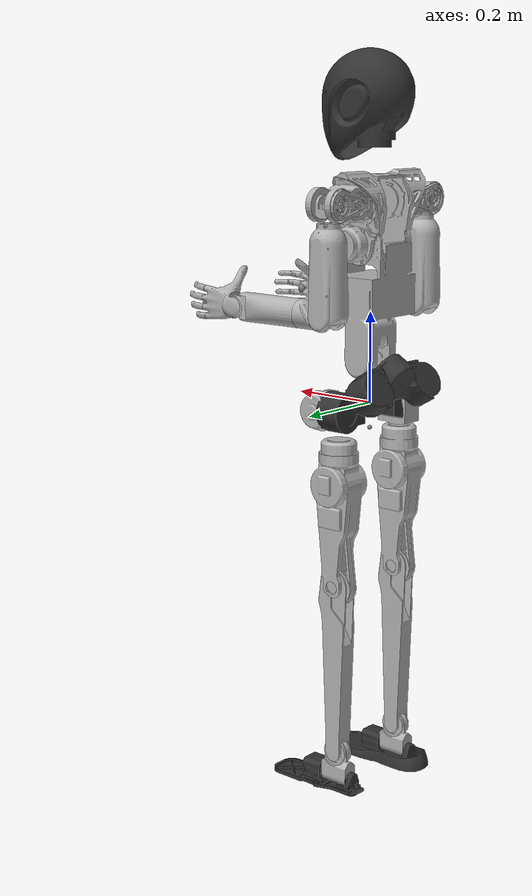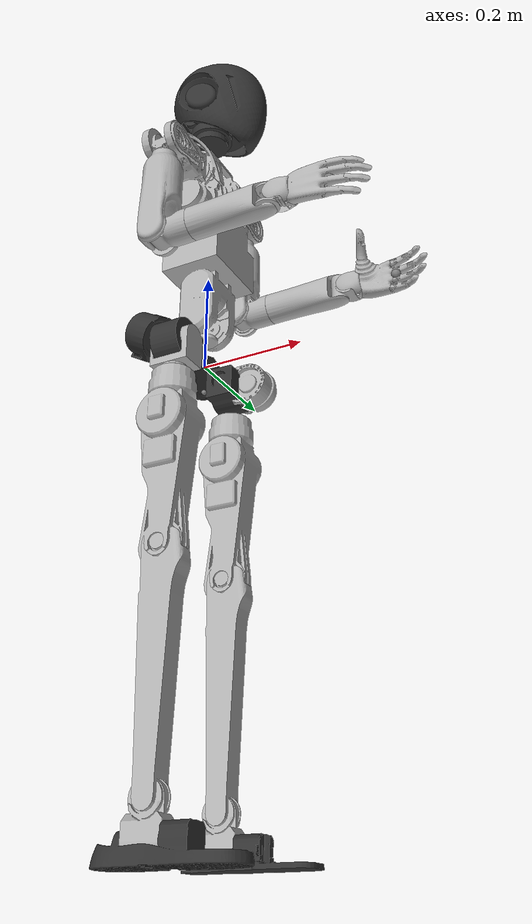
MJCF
<mujoco model="F2">
  <compiler angle="radian" meshdir="./meshes/" autolimits="true"/>
  <default>
    <default class="h1">
      <default class="visual">
        <geom type="mesh" density="0" material="silver" contype="0" conaffinity="0" group="2"/>
      </default>
      <default class="collision">
        <geom type="capsule" priority="1" condim="6" group="3"/>
        <default class="foot_capsule">
          <geom size="0.04" rgba="0.75294 0.75294 0.75294 1" />
        </default>
      </default>
      <site rgba="0.75294 0.75294 0.75294 1" group="5"/>
    </default>
  </default>

  <asset>
    <material name="silver" rgba="0.7 0.7 0.7 1"/>
    <material name="black" rgba="0.2 0.2 0.2 1"/>

    <mesh name="pelvis" file="pelvis.STL"/>
    <mesh name="left_hip_pitch_link" file="left_hip_pitch_link.STL"/>
    <mesh name="left_hip_roll_link" file="left_hip_roll_link.STL"/>
    <mesh name="left_hip_yaw_link" file="left_hip_yaw_link.STL"/>
    <mesh name="left_knee_link" file="left_knee_link.STL"/>
    <mesh name="left_ankle_pitch_link" file="left_ankle_pitch_link.STL"/>
    <mesh name="left_ankle_roll_link" file="left_ankle_roll_link.STL"/>
    <mesh name="right_hip_pitch_link" file="right_hip_pitch_link.STL"/>
    <mesh name="right_hip_roll_link" file="right_hip_roll_link.STL"/>
    <mesh name="right_hip_yaw_link" file="right_hip_yaw_link.STL"/>
    <mesh name="right_knee_link" file="right_knee_link.STL"/>
    <mesh name="right_ankle_pitch_link" file="right_ankle_pitch_link.STL"/>
    <mesh name="right_ankle_roll_link" file="right_ankle_roll_link.STL"/>
    <mesh name="waist_yaw_link" file="waist_yaw_link.STL"/>
    <mesh name="waist_roll_link" file="waist_roll_link.STL"/>
    <mesh name="torso_link" file="torso_link.STL"/>
    <mesh name="left_shoulder_pitch_link" file="left_shoulder_pitch_link.STL"/>
    <mesh name="left_shoulder_roll_link" file="left_shoulder_roll_link.STL"/>
    <mesh name="left_shoulder_yaw_link" file="left_shoulder_yaw_link.STL"/>
    <mesh name="left_elbow_link" file="left_elbow_link.STL"/>
    <mesh name="left_wrist_roll_link_v1_1" file="left_wrist_roll_link_v1_1.STL"/>
    <mesh name="left_wrist_yaw_link_v1_1" file="left_wrist_yaw_link_v1_1.STL"/>
    <mesh name="left_wrist_pitch_link_v1_1" file="left_wrist_pitch_link_v1_1.STL"/>
    <mesh name="left_hand_link" file="left_hand_link.STL"/>
    <mesh name="right_shoulder_pitch_link" file="right_shoulder_pitch_link.STL"/>
    <mesh name="right_shoulder_roll_link" file="right_shoulder_roll_link.STL"/>
    <mesh name="right_shoulder_yaw_link" file="right_shoulder_yaw_link.STL"/>
    <mesh name="right_elbow_link" file="right_elbow_link.STL"/>
    <mesh name="right_wrist_roll_link_v1_1" file="right_wrist_roll_link_v1_1.STL"/>
    <mesh name="right_wrist_yaw_link_v1_1" file="right_wrist_yaw_link_v1_1.STL"/>
    <mesh name="right_wrist_pitch_link_v1_1" file="right_wrist_pitch_link_v1_1.STL"/>
    <mesh name="right_hand_link" file="right_hand_link.STL"/>
    <mesh name="head_yaw_link" file="head_yaw_link.STL"/>
    <mesh name="head_pitch_link" file="head_pitch_link.STL"/>
  </asset>

  <worldbody>
    <body name="pelvis" >
      <light pos="0 0 2" mode="trackcom"/>
      <camera name="tracking" pos="1.734 -1.135 .35" xyaxes="0.552 0.834 -0.000 -0.170 0.112 0.979" mode="trackcom"/>
      <inertial pos="1.227e-05 0 0.00175202" quat="0.707113 0.707071 -0.00603929 0.00224665" mass="1.923" diaginertia="0.00328643 0.00327877 0.00187875"/>
      <freejoint name="floating_base_joint"/>
      <geom class="visual" material="black" mesh="pelvis"/>
      <geom name="pelvis_collision" class="collision" type="sphere" size="0.05" pos="0 0 -0.00"/>
      <site name="imu_in_pelvis" size="0.005" pos="0. 0 -0.055"/>
      <body name="left_hip_pitch_link" pos="0 0.0495 0">
        <inertial pos="-0.00059823 0.053979 -0.0042224" quat="0.652315 0.75755 -0.0242065 0.00423816" mass="1.04" diaginertia="0.00138575 0.00113626 0.000872142"/>
        <joint name="left_hip_pitch_joint" pos="0 0 0" axis="0 1 0" range="-2.3562 2.3562"/>
        <geom class="visual" material="black" mesh="left_hip_pitch_link"/>
        <body name="left_hip_roll_link" pos="0 0.0555 -0.005">
          <inertial pos="0.0043213 0 -0.027634" quat="0.408553 0.57731 0.577033 0.408449" mass="0.14" diaginertia="0.00018358 0.000141244 0.000101956"/>
          <joint name="left_hip_roll_joint" axis="1 0 0" range="-0.5236 1.5708" actuatorfrcrange="-87 87"/>
          <geom class="visual" mesh="left_hip_roll_link"/>
          <geom name="left_hip_collision" class="collision" size="0.045"  fromto="-0.0 0 0 -0.0 0 -0.07"/>
          <body name="left_hip_yaw_link" pos="0 0 -0.0536">
            <inertial pos="0.00010121 1.383e-05 -0.102311" quat="0.99999 0.00375205 0.0025479 0.000511966" mass="2.275" diaginertia="0.0191971 0.018658 0.00224713"/>
            <joint name="left_hip_yaw_joint" pos="0 0 0" axis="0 0 1" range="-1.8326 1.8326" actuatorfrcrange="-87 87"/>
            <geom class="visual" mesh="left_hip_yaw_link"/>
            <geom name="left_thigh_collision" class="collision" size="0.045" fromto="-0.0 0 -0.10 -0.00 0 -0.28"/>
            <body name="left_knee_link" pos="0 0 -0.3304">
              <inertial pos="0.00334882 -0.00032247 -0.149842" quat="0.698241 -0.0104039 -0.00666549 0.715757" mass="0.635" diaginertia="0.0111018 0.0110139 0.000311373"/>
              <joint name="left_knee_joint" pos="0 0 0" axis="0 1 0" range="-0.01745 2.3562" actuatorfrcrange="-120 120"/>
              <geom class="visual" mesh="left_knee_link"/>
              <geom name="left_shin_collision" class="collision" size="0.045" fromto="0.00 0 -0.02 -0.00 0 -0.37"/>
              <body name="left_ankle_pitch_link" pos="0 0 -0.39">
                <inertial pos="0.0024178 -1.256e-05 -0.0238176" quat="0.704903 0.052882 0.0527757 0.705358" mass="0.22" diaginertia="0.00023561 0.000170507 9.99229e-05"/>
                <joint name="left_ankle_pitch_joint" pos="0 0 0" axis="0 1 0" range="-0.873 1.0472" actuatorfrcrange="-89 89"/>
                <geom class="visual" mesh="left_ankle_pitch_link"/>
                <body name="left_ankle_roll_link" pos="0 0 -0.058">
                  <inertial pos="0.0510876 0.00023922 -0.00447269" quat="0 0.707107 0 0.707107" mass="0.411" diaginertia="0.00047916 0.00047226 9.993e-05"/>
                  <joint name="left_ankle_roll_joint" pos="0 0 0" axis="1 0 0" range="-0.5236 0.5236"/>
                  <geom class="visual" material="black" mesh="left_ankle_roll_link"/>
                  <geom name="left_foot1_collision" class="foot_capsule" fromto="0.1 -0.026 -0.025 0.05 -0.027 -0.025"/>
                  <geom name="left_foot2_collision" class="foot_capsule" fromto="-0.044 -0.018 -0.025 0.123 -0.018 -0.025"/>
                  <geom name="left_foot3_collision" class="foot_capsule" fromto="-0.052 -0.01 -0.025 0.13 -0.01 -0.025"/>
                  <geom name="left_foot4_collision" class="foot_capsule" fromto="-0.054 0 -0.025 0.132 0 -0.025"/>
                  <geom name="left_foot5_collision" class="foot_capsule" fromto="-0.052 0.01 -0.025 0.13 0.01 -0.025"/>
                  <geom name="left_foot6_collision" class="foot_capsule" fromto="-0.044 0.018 -0.025 0.123 0.018 -0.025"/>
                  <geom name="left_foot7_collision" class="foot_capsule" fromto="0.1 0.026 -0.025 0.05 0.026 -0.025"/>
                  <site name="left_foot" rgba="1 0 0 1" pos="0.02 0 -0.01"/>
                </body>
              </body>
            </body>
          </body>
        </body>
      </body>
      <body name="right_hip_pitch_link" pos="0 -0.0495 0">
        <inertial pos="-0.00059823 -0.053979 -0.0042224" quat="0.75755 0.652315 -0.00423816 0.0242065" mass="1.04" diaginertia="0.00138575 0.00113626 0.000872142"/>
        <joint name="right_hip_pitch_joint" pos="0 0 0" axis="0 1 0" range="-2.3562 2.3562" actuatorfrcrange="-75 75"/>
        <geom class="visual" material="black" mesh="right_hip_pitch_link"/>
        <body name="right_hip_roll_link" pos="0 -0.0555 -0.005">
          <inertial pos="0.0043213 0 -0.027634" quat="0.408553 0.57731 0.577033 0.408449" mass="0.14" diaginertia="0.00018358 0.000141244 0.000101956"/>
          <joint name="right_hip_roll_joint" pos="0 0 0" axis="1 0 0" range="-1.5708 0.5236" actuatorfrcrange="-87 87"/>
          <geom class="visual" mesh="right_hip_roll_link"/>
          <geom name="right_hip_collision" class="collision" size="0.045"  fromto="-0.0 0 0 -0.0 0 -0.07"/>
          <body name="right_hip_yaw_link" pos="0 0 -0.0536">
            <inertial pos="0.00028095 -0.00037298 -0.102311" quat="0.999997 0.00155532 0.00134116 0.00120674" mass="2.275" diaginertia="0.0191961 0.0186572 0.00224772"/>
            <joint name="right_hip_yaw_joint" pos="0 0 0" axis="0 0 1" range="-1.8326 1.8326" actuatorfrcrange="-87 87"/>
            <geom class="visual" mesh="right_hip_yaw_link"/>
            <geom name="right_thigh_collision" class="collision" size="0.045" fromto="-0.0 0 -0.10 -0.00 0 -0.28"/>
            <body name="right_knee_link" pos="0 0 -0.3304">
              <inertial pos="0.0033489 -0.00032248 -0.14984" quat="0.715839 -0.00666391 -0.0104045 0.698156" mass="0.635" diaginertia="0.0111013 0.0110142 0.000311373"/>
              <joint name="right_knee_joint" pos="0 0 0" axis="0 1 0" range="-0.01745 2.3562" actuatorfrcrange="-120 120"/>
              <geom class="visual" mesh="right_knee_link"/>
              <geom name="right_shin_collision" class="collision" size="0.045" fromto="0.00 0 -0.02 -0.00 0 -0.37"/>
              <body name="right_ankle_pitch_link" pos="0 0 -0.39">
                <inertial pos="0.0024178 -1.257e-05 -0.023818" quat="0.704903 0.052882 0.0527757 0.705358" mass="0.22" diaginertia="0.00023561 0.000170507 9.99229e-05"/>
                <joint name="right_ankle_pitch_joint" pos="0 0 0" axis="0 1 0" range="-0.873 1.0472" actuatorfrcrange="-89 89"/>
                <geom class="visual" mesh="right_ankle_pitch_link"/>
                <body name="right_ankle_roll_link" pos="0 0 -0.058">
                  <inertial pos="0.0510876 0.00023921 -0.00447269" quat="0 0.707107 0 0.707107" mass="0.411" diaginertia="0.00047916 0.00047226 9.993e-05"/>
                  <geom class="visual" material="black" mesh="right_ankle_roll_link"/>
                  <joint name="right_ankle_roll_joint" pos="0 0 0" axis="1 0 0" range="-0.5236 0.5236" actuatorfrcrange="-12 12"/>
                  <geom name="right_foot1_collision" class="foot_capsule" fromto="0.1 -0.026 -0.025 0.05 -0.026 -0.025"/>
                  <geom name="right_foot2_collision" class="foot_capsule" fromto="-0.044 -0.018 -0.025 0.123 -0.018 -0.025"/>
                  <geom name="right_foot3_collision" class="foot_capsule" fromto="-0.052 -0.01 -0.025 0.13 -0.01 -0.025"/>
                  <geom name="right_foot4_collision" class="foot_capsule" fromto="-0.054 0 -0.025 0.132 0 -0.025"/>
                  <geom name="right_foot5_collision" class="foot_capsule" fromto="-0.052 0.01 -0.025 0.13 0.01 -0.025"/>
                  <geom name="right_foot6_collision" class="foot_capsule" fromto="-0.044 0.018 -0.025 0.123 0.018 -0.025"/>
                  <geom name="right_foot7_collision" class="foot_capsule" fromto="0.1 0.026 -0.025 0.05 0.026 -0.025"/>
                  <site name="right_foot" rgba="1 0 0 1" pos="0.02 0 -0.01"/>
                </body>
              </body>
            </body>
          </body>
        </body>
      </body>
      <body name="waist_yaw_link" pos="0 0 0.0955">
        <inertial pos="-0.000168719 0 0.00494718" quat="0.705214 0.0517024 0.0517024 0.705214" mass="0.274" diaginertia="0.000141864 0.000115748 0.00010802"/>
        <joint name="waist_yaw_joint" pos="0 0 0" axis="0 0 1" range="-1.5708 1.5708" actuatorfrcrange="-87 87"/>
        <geom class="visual" mesh="waist_yaw_link"/>
        <body name="torso_link">

          <inertial pos="-0.00019931 0.00150681 0.185114" mass="9.609" diaginertia="0.121179 0.120199 0.021852"/>
          <joint name="waist_roll_joint" pos="0 0 0" axis="1 0 0" range="-0.5236 0.5236" actuatorfrcrange="-87 87"/>
          <geom class="visual" mesh="torso_link"/>
          <geom name="torso_collision" class="collision" size="0.09" fromto="0.01 0 0.08 0.01 0 0.30"/>
          <geom name="head_collision" class="collision" type="sphere" size="0.09" pos="0 0 .56"/>
          <body name="left_shoulder_pitch_link" pos="-0.015 0.05635 0.342">
            <inertial pos="5.543e-05 0.0554533 5.429e-05" quat="0.500477 0.499362 -0.499832 0.500328" mass="1.277" diaginertia="0.00194002 0.00178135 0.00103975"/>
            <joint name="left_shoulder_pitch_joint" pos="0 0 0" axis="0 1 0" range="-3.6652 2.0944" actuatorfrcrange="-48 48"/>
            <geom class="visual" mesh="left_shoulder_pitch_link"/>
            <body name="left_shoulder_roll_link" pos="0 0.1031 0">
              <inertial pos="0 -0.00015563 -0.00797243" quat="0.449914 0.545507 0.449914 0.545507" mass="0.229" diaginertia="7.05648e-05 6.60152e-05 5.784e-05"/>
              <joint name="left_shoulder_roll_joint" pos="0 0 0" axis="1 0 0" range="-0.2618 2.356" actuatorfrcrange="-84 84"/>
              <geom class="visual" mesh="left_shoulder_roll_link"/>
              <body name="left_shoulder_yaw_link">
                <inertial pos="-7.8318e-05 0.001011 -0.12915" mass="1.194" diaginertia="0.00412845 0.00411827 0.00084103"/>
                <joint name="left_shoulder_yaw_joint" pos="0 0 0" axis="0 0 1" range="-2.1817 2.1817" actuatorfrcrange="-84 84"/>
                <geom class="visual" mesh="left_shoulder_yaw_link"/>
                <geom name="left_shoulder_yaw_collision" class="collision" size="0.035" fromto="0 0 -0.05 0 0 -0.20"/>
                <body name="left_elbow_link" pos="0 0 -0.2295">
                  <inertial pos="0.0167741 0 -0.00133301" quat="0 0.684589 0 0.728929" mass="0.185" diaginertia="0.000124726 0.00011358 7.98035e-05"/>
                  <joint name="left_elbow_joint" pos="0 0 0" axis="0 1 0" range="-0.6981 1.5707" actuatorfrcrange="-37 37"/>
                  <geom class="visual" mesh="left_elbow_link"/>
                  <geom name="left_elbow_yaw_collision" class="collision" size="0.035" fromto="-0.00 0 -0.0 0.185 0 -0.0"/>
                  <body name="left_wrist_roll_link">
                    <inertial pos="0.0985386 -0.00025438 -0.00071846" quat="0.49661 0.497949 0.510134 0.495166" mass="1.372" diaginertia="0.00443163 0.00434654 0.000486748"/>
                    <joint name="left_wrist_roll_joint" pos="0 0 0" axis="1 0 0" range="-2.0071 2.0071" actuatorfrcrange="-37 37"/>
                    <geom class="visual" mesh="left_wrist_roll_link_v1_1"/>
                    <body name="left_wrist_yaw_link" pos="0.23 0 0">
                      <inertial pos="0.0075268 0 0" quat="0.5 0.5 -0.5 0.5" mass="0.042" diaginertia="1.443e-05 1.052e-05 7.83e-06"/>
                      <joint name="left_wrist_yaw_joint" pos="0 0 0" axis="0 0 1" range="-1.1344 1.1344" actuatorfrcrange="-20 20"/>
                      <geom class="visual" mesh="left_wrist_yaw_link_v1_1"/>
                      <geom name="left_wrist_collision" class="collision" size="0.035" fromto="0.03 0 0 0.04 0 0"/>
                      <body name="left_wrist_pitch_link" pos="0.021 0 0">
                        <inertial pos="0.0745833 -0.00635348 0.00761055" quat="0.673531 0.336171 0.566101 0.335968" mass="0.53" diaginertia="0.00218929 0.00185367 0.000486625"/>
                        <joint name="left_wrist_pitch_joint" pos="0 0 0" axis="0 1 0" range="-0.5236 0.5236" actuatorfrcrange="-25 25"/>
                        <geom class="visual" mesh="left_wrist_pitch_link_v1_1"/>
                        <geom class="visual" mesh="left_hand_link"/>
                        <site name="left_palm" pos="0.10 0 0" size="0.01"/>
                        <geom name="left_hand_collision" class="collision" size="0.03" rgba=".2 .6 .2 .2" fromto="0.06 0 0 0.15 -0.00 0"/>
                      </body>
                    </body>
                  </body>
                </body>
              </body>
            </body>
          </body>
          <body name="right_shoulder_pitch_link" pos="-0.015 -0.05635 0.342">
            <inertial pos="0.00015543 -0.0554533 -5.429e-05" quat="0.500328 0.499832 -0.499362 0.500477" mass="1.277" diaginertia="0.00194002 0.00178135 0.00103975"/>
            <joint name="right_shoulder_pitch_joint" pos="0 0 0" axis="0 1 0" range="-3.6652 2.0944" actuatorfrcrange="-48 48"/>
            <geom class="visual" mesh="right_shoulder_pitch_link"/>
            <body name="right_shoulder_roll_link" pos="0 -0.1031 0">
              <inertial pos="0 -0.00015563 -0.00797243" quat="0.449914 0.545507 0.449914 0.545507" mass="0.229" diaginertia="7.05648e-05 6.60152e-05 5.784e-05"/>
              <joint name="right_shoulder_roll_joint" pos="0 0 0" axis="1 0 0" range="-2.356 0.2618" actuatorfrcrange="-84 84"/>
              <geom class="visual" mesh="right_shoulder_roll_link"/>
              <body name="right_shoulder_yaw_link">
                <inertial pos="-7.8318e-05 0.001011 -0.12915" mass="1.194" diaginertia="0.00412845 0.00411827 0.00084103"/>
                <joint name="right_shoulder_yaw_joint" pos="0 0 0" axis="0 0 1" range="-2.1817 2.1817" actuatorfrcrange="-84 84"/>
                <geom class="visual" mesh="right_shoulder_yaw_link"/>
                <geom name="right_shoulder_yaw_collision" class="collision" size="0.035" fromto="0 0 -0.05 0 0 -0.20"/>
                <body name="right_elbow_link" pos="0 0 -0.2295">
                  <inertial pos="0.0167741 0 -0.00133301" quat="0 0.684589 0 0.728929" mass="0.185" diaginertia="0.000124726 0.00011358 7.98035e-05"/>
                  <joint name="right_elbow_joint" pos="0 0 0" axis="0 1 0" range="-0.6981 1.5707" actuatorfrcrange="-37 37"/>
                  <geom class="visual" mesh="right_elbow_link"/>
                  <geom name="right_elbow_yaw_collision" class="collision" size="0.035" fromto="-0.00 0 -0.0 0.185 0 -0.0"/>
                  <body name="right_wrist_roll_link">
                    <inertial pos="0.0985386 -0.00025438 -0.00071846" quat="0.49661 0.497949 0.510134 0.495166" mass="1.372" diaginertia="0.00443163 0.00434654 0.000486748"/>
                    <joint name="right_wrist_roll_joint" pos="0 0 0" axis="1 0 0" range="-2.0071 2.0071" actuatorfrcrange="-37 37"/>
                    <geom class="visual" mesh="right_wrist_roll_link_v1_1"/>
                    <body name="right_wrist_yaw_link" pos="0.23 0 0">
                      <inertial pos="0.0075268 0 0" quat="0.5 0.5 -0.5 0.5" mass="0.042" diaginertia="1.443e-05 1.052e-05 7.83e-06"/>
                      <joint name="right_wrist_yaw_joint" pos="0 0 0" axis="0 0 1" range="-1.1344 1.1344" actuatorfrcrange="-20 20"/>
                      <geom class="visual" mesh="right_wrist_yaw_link_v1_1"/>
                      <geom name="right_wrist_collision" class="collision" size="0.035" fromto="0.03 0 0 0.04 0 0"/>
                      <body name="right_wrist_pitch_link" pos="0.021 0 0">
                        <inertial pos="0.0861973 0.00622963 0.00761411" quat="0.334902 0.565466 0.337436 0.673963" mass="0.53" diaginertia="0.00219004 0.00185458 0.00048651"/>
                        <joint name="right_wrist_pitch_joint" pos="0 0 0" axis="0 1 0" range="-0.5236 0.5236" actuatorfrcrange="-25 25"/>
                        <geom class="visual" mesh="right_wrist_pitch_link_v1_1"/>
                        <geom class="visual" mesh="right_hand_link"/>
                        <site name="right_palm" pos="0.10 0 0" size="0.01"/>
                        <geom name="right_hand_collision" class="collision" size="0.03" rgba=".2 .6 .2 .2" fromto="0.06 0 0 0.15 -0.00 0"/>
                      </body>
                    </body>
                  </body>
                </body>
              </body>
            </body>
          </body>
          <body name="head_yaw_link" pos="-0.011 0 0.5218">
            <inertial pos="-0.0115151 0 0.019677" quat="0.959901 0 -0.28034 0" mass="0.8" diaginertia="0.000485828 0.000458813 0.000216341"/>
            <geom class="visual" pos="0.0039635 0 -0.044" material="black" mesh="head_yaw_link"/>

            <body name="head_pitch_link" pos="-0.0295 0 0.0503">
              <inertial pos="0.0474296 1.03862e-06 0.0192405" quat="0 0.856691 0 0.515831" mass="0.8" diaginertia="0.00488189 0.004848 0.00387314"/>
              <geom class="visual" pos="0.0039635 0 -0.044" material="black" mesh="head_pitch_link"/>
            </body>
          </body>
        </body>
      </body>
    </body>
  </worldbody>
  <contact>
    <exclude body1="left_elbow_link" body2="left_wrist_pitch_link"/>
    <exclude body1="right_elbow_link" body2="right_wrist_pitch_link"/>
    <exclude body1="pelvis" body2="right_hip_roll_link"/>
    <exclude body1="pelvis" body2="left_hip_roll_link"/>
  </contact>
  <sensor>
    <gyro name="imu_ang_vel" site="imu_in_pelvis"/>
    <velocimeter name="imu_lin_vel" site="imu_in_pelvis"/>
    <accelerometer name="imu_lin_acc" site="imu_in_pelvis"/>
    <subtreeangmom name="root_angmom" body="pelvis"/>
  </sensor>
</mujoco>
